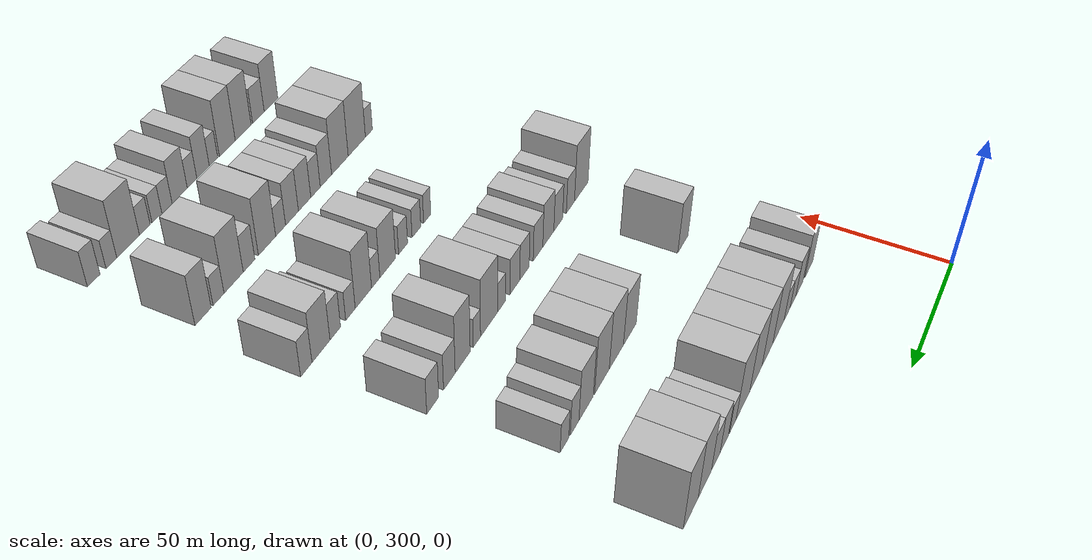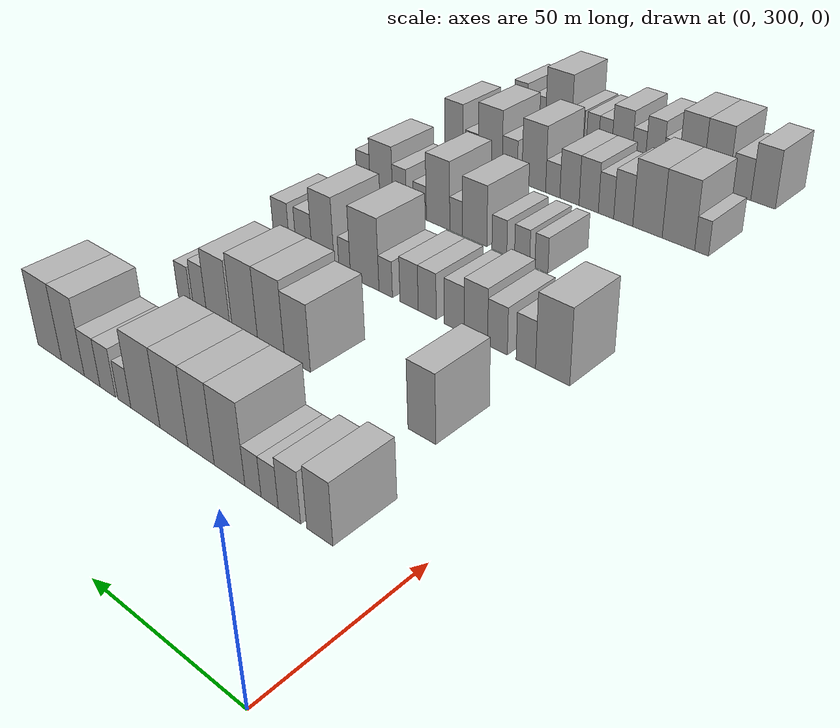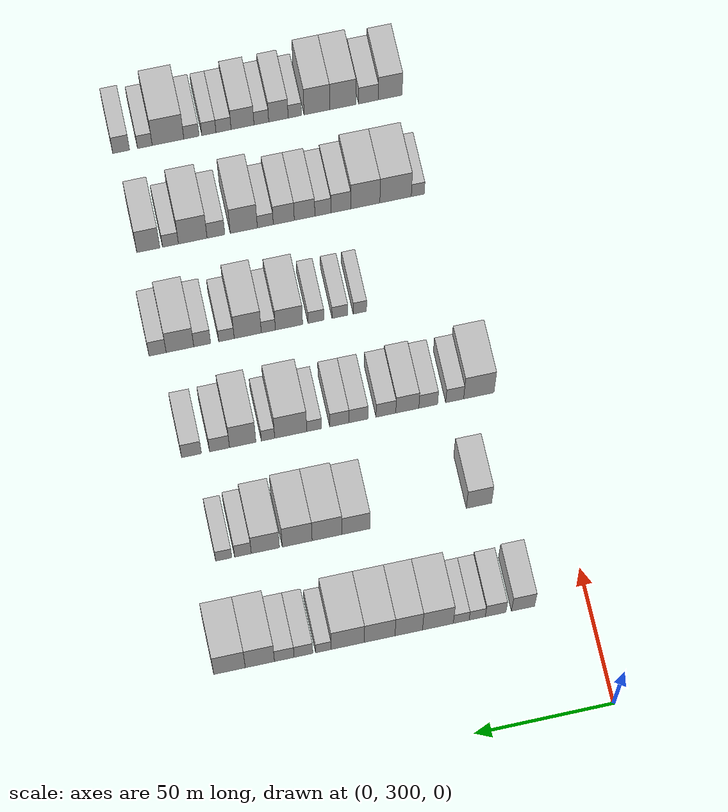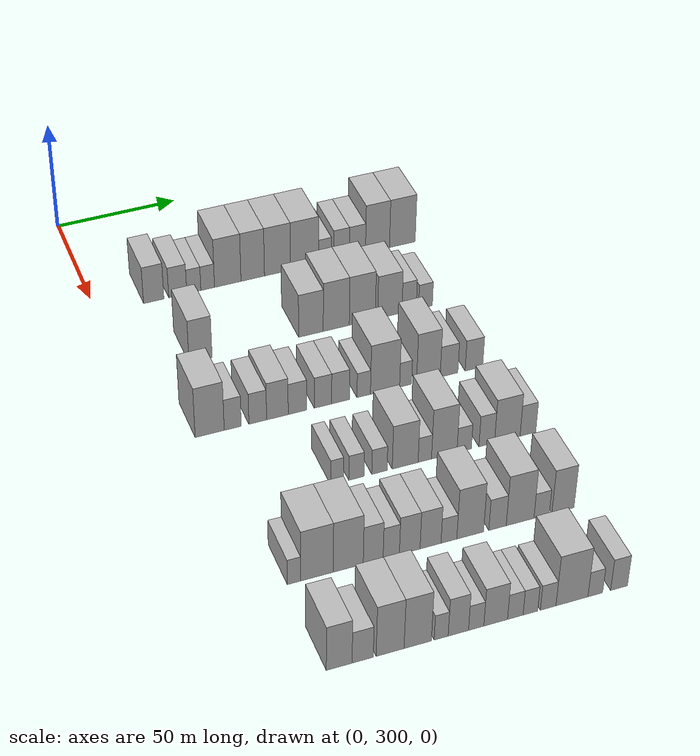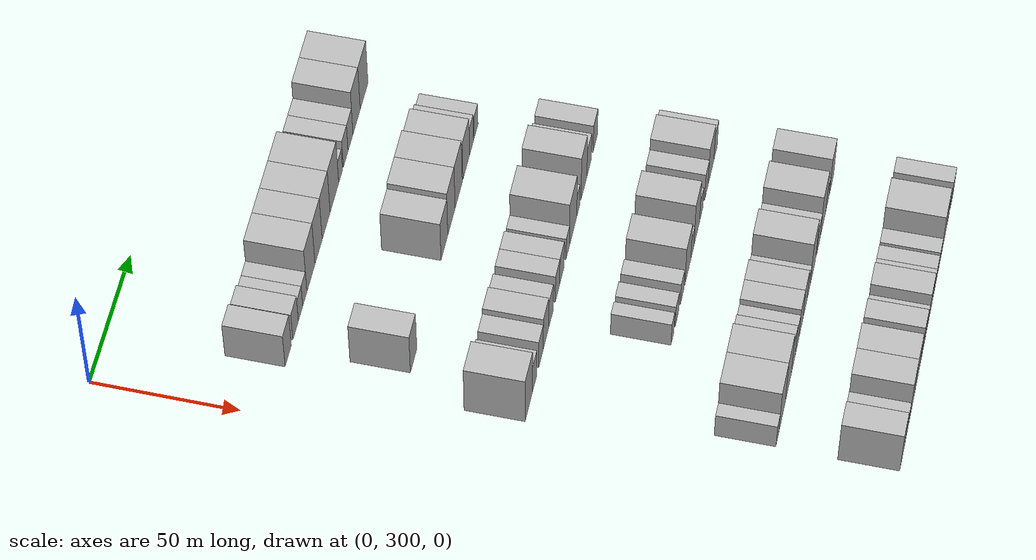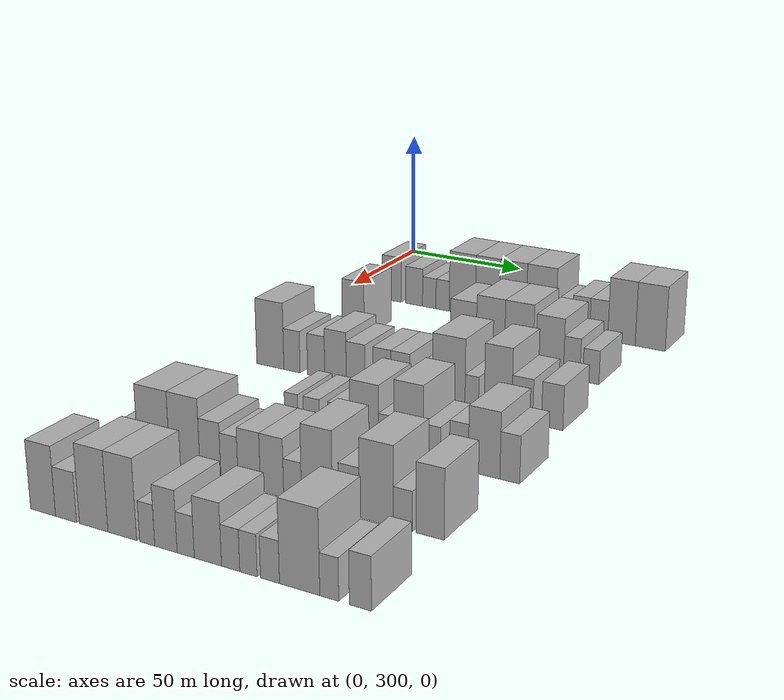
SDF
<sdf version="1.6">
 <world name="default">
  <model name="building_103">
   <static>1</static>
   <pose>50.0000 323.1793 0 0.000000 0.000000 0.000000</pose>
   <link name="link">
    <pose>0 0 9.00 0 0 0</pose>
    <collision name="collision"><geometry><box><size>20.0000 8.3564 18.0000</size></box></geometry></collision>
    <visual name="visual">
     <cast_shadows>0</cast_shadows>
     <geometry><box><size>20.0000 8.3564 18.0000</size></box></geometry>
     <material>
      <script>
       <uri>model://HANNAS_wall/materials/scripts</uri>
       <uri>model://HANNAS_wall/materials/textures</uri>
       <name>vrc/HANNAS_wall</name>
      </script>
     </material>
    </visual>
   </link>
  </model>
  <model name="building_104">
   <static>1</static>
   <pose>50.0000 333.0818 0 0.000000 0.000000 0.000000</pose>
   <link name="link">
    <pose>0 0 7.50 0 0 0</pose>
    <collision name="collision"><geometry><box><size>20.0000 7.4485 15.0000</size></box></geometry></collision>
    <visual name="visual">
     <cast_shadows>0</cast_shadows>
     <geometry><box><size>20.0000 7.4485 15.0000</size></box></geometry>
     <material>
      <script>
       <uri>model://HANNAS_wall/materials/scripts</uri>
       <uri>model://HANNAS_wall/materials/textures</uri>
       <name>vrc/HANNAS_wall</name>
      </script>
     </material>
    </visual>
   </link>
  </model>
  <model name="building_105">
   <static>1</static>
   <pose>50.0000 339.7358 0 0.000000 0.000000 0.000000</pose>
   <link name="link">
    <pose>0 0 6.00 0 0 0</pose>
    <collision name="collision"><geometry><box><size>20.0000 5.8594 12.0000</size></box></geometry></collision>
    <visual name="visual">
     <cast_shadows>0</cast_shadows>
     <geometry><box><size>20.0000 5.8594 12.0000</size></box></geometry>
     <material>
      <script>
       <uri>model://HANNAS_wall/materials/scripts</uri>
       <uri>model://HANNAS_wall/materials/textures</uri>
       <name>vrc/HANNAS_wall</name>
      </script>
     </material>
    </visual>
   </link>
  </model>
  <model name="building_106">
   <static>1</static>
   <pose>50.0000 345.5210 0 0.000000 0.000000 0.000000</pose>
   <link name="link">
    <pose>0 0 6.00 0 0 0</pose>
    <collision name="collision"><geometry><box><size>20.0000 5.7110 12.0000</size></box></geometry></collision>
    <visual name="visual">
     <cast_shadows>0</cast_shadows>
     <geometry><box><size>20.0000 5.7110 12.0000</size></box></geometry>
     <material>
      <script>
       <uri>model://HANNAS_wall/materials/scripts</uri>
       <uri>model://HANNAS_wall/materials/textures</uri>
       <name>vrc/HANNAS_wall</name>
      </script>
     </material>
    </visual>
   </link>
  </model>
  <model name="building_107">
   <static>1</static>
   <pose>50.0000 353.9151 0 0.000000 0.000000 0.000000</pose>
   <link name="link">
    <pose>0 0 12.00 0 0 0</pose>
    <collision name="collision"><geometry><box><size>20.0000 11.0773 24.0000</size></box></geometry></collision>
    <visual name="visual">
     <cast_shadows>0</cast_shadows>
     <geometry><box><size>20.0000 11.0773 24.0000</size></box></geometry>
     <material>
      <script>
       <uri>model://HANNAS_wall/materials/scripts</uri>
       <uri>model://HANNAS_wall/materials/textures</uri>
       <name>vrc/HANNAS_wall</name>
      </script>
     </material>
    </visual>
   </link>
  </model>
  <model name="building_108">
   <static>1</static>
   <pose>50.0000 364.4114 0 0.000000 0.000000 0.000000</pose>
   <link name="link">
    <pose>0 0 12.00 0 0 0</pose>
    <collision name="collision"><geometry><box><size>20.0000 9.9153 24.0000</size></box></geometry></collision>
    <visual name="visual">
     <cast_shadows>0</cast_shadows>
     <geometry><box><size>20.0000 9.9153 24.0000</size></box></geometry>
     <material>
      <script>
       <uri>model://HANNAS_wall/materials/scripts</uri>
       <uri>model://HANNAS_wall/materials/textures</uri>
       <name>vrc/HANNAS_wall</name>
      </script>
     </material>
    </visual>
   </link>
  </model>
  <model name="building_109">
   <static>1</static>
   <pose>50.0000 374.8826 0 0.000000 0.000000 0.000000</pose>
   <link name="link">
    <pose>0 0 12.00 0 0 0</pose>
    <collision name="collision"><geometry><box><size>20.0000 11.0272 24.0000</size></box></geometry></collision>
    <visual name="visual">
     <cast_shadows>0</cast_shadows>
     <geometry><box><size>20.0000 11.0272 24.0000</size></box></geometry>
     <material>
      <script>
       <uri>model://HANNAS_wall/materials/scripts</uri>
       <uri>model://HANNAS_wall/materials/textures</uri>
       <name>vrc/HANNAS_wall</name>
      </script>
     </material>
    </visual>
   </link>
  </model>
  <model name="building_110">
   <static>1</static>
   <pose>50.0000 386.3734 0 0.000000 0.000000 0.000000</pose>
   <link name="link">
    <pose>0 0 12.00 0 0 0</pose>
    <collision name="collision"><geometry><box><size>20.0000 11.9544 24.0000</size></box></geometry></collision>
    <visual name="visual">
     <cast_shadows>0</cast_shadows>
     <geometry><box><size>20.0000 11.9544 24.0000</size></box></geometry>
     <material>
      <script>
       <uri>model://HANNAS_wall/materials/scripts</uri>
       <uri>model://HANNAS_wall/materials/textures</uri>
       <name>vrc/HANNAS_wall</name>
      </script>
     </material>
    </visual>
   </link>
  </model>
  <model name="building_111">
   <static>1</static>
   <pose>50.0000 395.1246 0 0.000000 0.000000 0.000000</pose>
   <link name="link">
    <pose>0 0 6.00 0 0 0</pose>
    <collision name="collision"><geometry><box><size>20.0000 5.5478 12.0000</size></box></geometry></collision>
    <visual name="visual">
     <cast_shadows>0</cast_shadows>
     <geometry><box><size>20.0000 5.5478 12.0000</size></box></geometry>
     <material>
      <script>
       <uri>model://HANNAS_wall/materials/scripts</uri>
       <uri>model://HANNAS_wall/materials/textures</uri>
       <name>vrc/HANNAS_wall</name>
      </script>
     </material>
    </visual>
   </link>
  </model>
  <model name="building_112">
   <static>1</static>
   <pose>50.0000 402.2598 0 0.000000 0.000000 0.000000</pose>
   <link name="link">
    <pose>0 0 7.50 0 0 0</pose>
    <collision name="collision"><geometry><box><size>20.0000 6.7225 15.0000</size></box></geometry></collision>
    <visual name="visual">
     <cast_shadows>0</cast_shadows>
     <geometry><box><size>20.0000 6.7225 15.0000</size></box></geometry>
     <material>
      <script>
       <uri>model://HANNAS_wall/materials/scripts</uri>
       <uri>model://HANNAS_wall/materials/textures</uri>
       <name>vrc/HANNAS_wall</name>
      </script>
     </material>
    </visual>
   </link>
  </model>
  <model name="building_113">
   <static>1</static>
   <pose>50.0000 409.1342 0 0.000000 0.000000 0.000000</pose>
   <link name="link">
    <pose>0 0 7.50 0 0 0</pose>
    <collision name="collision"><geometry><box><size>20.0000 7.0264 15.0000</size></box></geometry></collision>
    <visual name="visual">
     <cast_shadows>0</cast_shadows>
     <geometry><box><size>20.0000 7.0264 15.0000</size></box></geometry>
     <material>
      <script>
       <uri>model://HANNAS_wall/materials/scripts</uri>
       <uri>model://HANNAS_wall/materials/textures</uri>
       <name>vrc/HANNAS_wall</name>
      </script>
     </material>
    </visual>
   </link>
  </model>
  <model name="building_114">
   <static>1</static>
   <pose>50.0000 417.8724 0 0.000000 0.000000 0.000000</pose>
   <link name="link">
    <pose>0 0 12.00 0 0 0</pose>
    <collision name="collision"><geometry><box><size>20.0000 10.4499 24.0000</size></box></geometry></collision>
    <visual name="visual">
     <cast_shadows>0</cast_shadows>
     <geometry><box><size>20.0000 10.4499 24.0000</size></box></geometry>
     <material>
      <script>
       <uri>model://HANNAS_wall/materials/scripts</uri>
       <uri>model://HANNAS_wall/materials/textures</uri>
       <name>vrc/HANNAS_wall</name>
      </script>
     </material>
    </visual>
   </link>
  </model>
  <model name="building_115">
   <static>1</static>
   <pose>50.0000 428.7283 0 0.000000 0.000000 0.000000</pose>
   <link name="link">
    <pose>0 0 12.00 0 0 0</pose>
    <collision name="collision"><geometry><box><size>20.0000 11.2621 24.0000</size></box></geometry></collision>
    <visual name="visual">
     <cast_shadows>0</cast_shadows>
     <geometry><box><size>20.0000 11.2621 24.0000</size></box></geometry>
     <material>
      <script>
       <uri>model://HANNAS_wall/materials/scripts</uri>
       <uri>model://HANNAS_wall/materials/textures</uri>
       <name>vrc/HANNAS_wall</name>
      </script>
     </material>
    </visual>
   </link>
  </model>
  <model name="building_244">
   <static>1</static>
   <pose>90.0000 329.8885 0 0.000000 0.000000 0.000000</pose>
   <link name="link">
    <pose>0 0 10.50 0 0 0</pose>
    <collision name="collision"><geometry><box><size>20.0000 9.2414 21.0000</size></box></geometry></collision>
    <visual name="visual">
     <cast_shadows>0</cast_shadows>
     <geometry><box><size>20.0000 9.2414 21.0000</size></box></geometry>
     <material>
      <script>
       <uri>model://HANNAS_wall/materials/scripts</uri>
       <uri>model://HANNAS_wall/materials/textures</uri>
       <name>vrc/HANNAS_wall</name>
      </script>
     </material>
    </visual>
   </link>
  </model>
  <model name="building_245">
   <static>1</static>
   <pose>90.0000 374.7050 0 0.000000 0.000000 0.000000</pose>
   <link name="link">
    <pose>0 0 10.50 0 0 0</pose>
    <collision name="collision"><geometry><box><size>20.0000 10.1305 21.0000</size></box></geometry></collision>
    <visual name="visual">
     <cast_shadows>0</cast_shadows>
     <geometry><box><size>20.0000 10.1305 21.0000</size></box></geometry>
     <material>
      <script>
       <uri>model://HANNAS_wall/materials/scripts</uri>
       <uri>model://HANNAS_wall/materials/textures</uri>
       <name>vrc/HANNAS_wall</name>
      </script>
     </material>
    </visual>
   </link>
  </model>
  <model name="building_246">
   <static>1</static>
   <pose>90.0000 385.1785 0 0.000000 0.000000 0.000000</pose>
   <link name="link">
    <pose>0 0 12.00 0 0 0</pose>
    <collision name="collision"><geometry><box><size>20.0000 10.8166 24.0000</size></box></geometry></collision>
    <visual name="visual">
     <cast_shadows>0</cast_shadows>
     <geometry><box><size>20.0000 10.8166 24.0000</size></box></geometry>
     <material>
      <script>
       <uri>model://HANNAS_wall/materials/scripts</uri>
       <uri>model://HANNAS_wall/materials/textures</uri>
       <name>vrc/HANNAS_wall</name>
      </script>
     </material>
    </visual>
   </link>
  </model>
  <model name="building_247">
   <static>1</static>
   <pose>90.0000 395.9955 0 0.000000 0.000000 0.000000</pose>
   <link name="link">
    <pose>0 0 12.00 0 0 0</pose>
    <collision name="collision"><geometry><box><size>20.0000 10.8173 24.0000</size></box></geometry></collision>
    <visual name="visual">
     <cast_shadows>0</cast_shadows>
     <geometry><box><size>20.0000 10.8173 24.0000</size></box></geometry>
     <material>
      <script>
       <uri>model://HANNAS_wall/materials/scripts</uri>
       <uri>model://HANNAS_wall/materials/textures</uri>
       <name>vrc/HANNAS_wall</name>
      </script>
     </material>
    </visual>
   </link>
  </model>
  <model name="building_248">
   <static>1</static>
   <pose>90.0000 407.5100 0 0.000000 0.000000 0.000000</pose>
   <link name="link">
    <pose>0 0 10.50 0 0 0</pose>
    <collision name="collision"><geometry><box><size>20.0000 10.2117 21.0000</size></box></geometry></collision>
    <visual name="visual">
     <cast_shadows>0</cast_shadows>
     <geometry><box><size>20.0000 10.2117 21.0000</size></box></geometry>
     <material>
      <script>
       <uri>model://HANNAS_wall/materials/scripts</uri>
       <uri>model://HANNAS_wall/materials/textures</uri>
       <name>vrc/HANNAS_wall</name>
      </script>
     </material>
    </visual>
   </link>
  </model>
  <model name="building_249">
   <static>1</static>
   <pose>90.0000 415.6326 0 0.000000 0.000000 0.000000</pose>
   <link name="link">
    <pose>0 0 7.50 0 0 0</pose>
    <collision name="collision"><geometry><box><size>20.0000 6.0335 15.0000</size></box></geometry></collision>
    <visual name="visual">
     <cast_shadows>0</cast_shadows>
     <geometry><box><size>20.0000 6.0335 15.0000</size></box></geometry>
     <material>
      <script>
       <uri>model://HANNAS_wall/materials/scripts</uri>
       <uri>model://HANNAS_wall/materials/textures</uri>
       <name>vrc/HANNAS_wall</name>
      </script>
     </material>
    </visual>
   </link>
  </model>
  <model name="building_250">
   <static>1</static>
   <pose>90.0000 422.5718 0 0.000000 0.000000 0.000000</pose>
   <link name="link">
    <pose>0 0 6.00 0 0 0</pose>
    <collision name="collision"><geometry><box><size>20.0000 5.8448 12.0000</size></box></geometry></collision>
    <visual name="visual">
     <cast_shadows>0</cast_shadows>
     <geometry><box><size>20.0000 5.8448 12.0000</size></box></geometry>
     <material>
      <script>
       <uri>model://HANNAS_wall/materials/scripts</uri>
       <uri>model://HANNAS_wall/materials/textures</uri>
       <name>vrc/HANNAS_wall</name>
      </script>
     </material>
    </visual>
   </link>
  </model>
  <model name="building_377">
   <static>1</static>
   <pose>130.0000 320.7247 0 0.000000 0.000000 0.000000</pose>
   <link name="link">
    <pose>0 0 12.00 0 0 0</pose>
    <collision name="collision"><geometry><box><size>20.0000 11.2108 24.0000</size></box></geometry></collision>
    <visual name="visual">
     <cast_shadows>0</cast_shadows>
     <geometry><box><size>20.0000 11.2108 24.0000</size></box></geometry>
     <material>
      <script>
       <uri>model://HANNAS_wall/materials/scripts</uri>
       <uri>model://HANNAS_wall/materials/textures</uri>
       <name>vrc/HANNAS_wall</name>
      </script>
     </material>
    </visual>
   </link>
  </model>
  <model name="building_378">
   <static>1</static>
   <pose>130.0000 329.6202 0 0.000000 0.000000 0.000000</pose>
   <link name="link">
    <pose>0 0 7.50 0 0 0</pose>
    <collision name="collision"><geometry><box><size>20.0000 6.5800 15.0000</size></box></geometry></collision>
    <visual name="visual">
     <cast_shadows>0</cast_shadows>
     <geometry><box><size>20.0000 6.5800 15.0000</size></box></geometry>
     <material>
      <script>
       <uri>model://HANNAS_wall/materials/scripts</uri>
       <uri>model://HANNAS_wall/materials/textures</uri>
       <name>vrc/HANNAS_wall</name>
      </script>
     </material>
    </visual>
   </link>
  </model>
  <model name="building_379">
   <static>1</static>
   <pose>130.0000 339.3630 0 0.000000 0.000000 0.000000</pose>
   <link name="link">
    <pose>0 0 7.50 0 0 0</pose>
    <collision name="collision"><geometry><box><size>20.0000 6.9056 15.0000</size></box></geometry></collision>
    <visual name="visual">
     <cast_shadows>0</cast_shadows>
     <geometry><box><size>20.0000 6.9056 15.0000</size></box></geometry>
     <material>
      <script>
       <uri>model://HANNAS_wall/materials/scripts</uri>
       <uri>model://HANNAS_wall/materials/textures</uri>
       <name>vrc/HANNAS_wall</name>
      </script>
     </material>
    </visual>
   </link>
  </model>
  <model name="building_380">
   <static>1</static>
   <pose>130.0000 347.0591 0 0.000000 0.000000 0.000000</pose>
   <link name="link">
    <pose>0 0 9.00 0 0 0</pose>
    <collision name="collision"><geometry><box><size>20.0000 8.4866 18.0000</size></box></geometry></collision>
    <visual name="visual">
     <cast_shadows>0</cast_shadows>
     <geometry><box><size>20.0000 8.4866 18.0000</size></box></geometry>
     <material>
      <script>
       <uri>model://HANNAS_wall/materials/scripts</uri>
       <uri>model://HANNAS_wall/materials/textures</uri>
       <name>vrc/HANNAS_wall</name>
      </script>
     </material>
    </visual>
   </link>
  </model>
  <model name="building_381">
   <static>1</static>
   <pose>130.0000 354.9352 0 0.000000 0.000000 0.000000</pose>
   <link name="link">
    <pose>0 0 7.50 0 0 0</pose>
    <collision name="collision"><geometry><box><size>20.0000 7.2655 15.0000</size></box></geometry></collision>
    <visual name="visual">
     <cast_shadows>0</cast_shadows>
     <geometry><box><size>20.0000 7.2655 15.0000</size></box></geometry>
     <material>
      <script>
       <uri>model://HANNAS_wall/materials/scripts</uri>
       <uri>model://HANNAS_wall/materials/textures</uri>
       <name>vrc/HANNAS_wall</name>
      </script>
     </material>
    </visual>
   </link>
  </model>
  <model name="building_382">
   <static>1</static>
   <pose>130.0000 365.0152 0 0.000000 0.000000 0.000000</pose>
   <link name="link">
    <pose>0 0 7.50 0 0 0</pose>
    <collision name="collision"><geometry><box><size>20.0000 6.8946 15.0000</size></box></geometry></collision>
    <visual name="visual">
     <cast_shadows>0</cast_shadows>
     <geometry><box><size>20.0000 6.8946 15.0000</size></box></geometry>
     <material>
      <script>
       <uri>model://HANNAS_wall/materials/scripts</uri>
       <uri>model://HANNAS_wall/materials/textures</uri>
       <name>vrc/HANNAS_wall</name>
      </script>
     </material>
    </visual>
   </link>
  </model>
  <model name="building_383">
   <static>1</static>
   <pose>130.0000 372.0171 0 0.000000 0.000000 0.000000</pose>
   <link name="link">
    <pose>0 0 7.50 0 0 0</pose>
    <collision name="collision"><geometry><box><size>20.0000 7.1091 15.0000</size></box></geometry></collision>
    <visual name="visual">
     <cast_shadows>0</cast_shadows>
     <geometry><box><size>20.0000 7.1091 15.0000</size></box></geometry>
     <material>
      <script>
       <uri>model://HANNAS_wall/materials/scripts</uri>
       <uri>model://HANNAS_wall/materials/textures</uri>
       <name>vrc/HANNAS_wall</name>
      </script>
     </material>
    </visual>
   </link>
  </model>
  <model name="building_384">
   <static>1</static>
   <pose>130.0000 381.2772 0 0.000000 0.000000 0.000000</pose>
   <link name="link">
    <pose>0 0 6.00 0 0 0</pose>
    <collision name="collision"><geometry><box><size>20.0000 5.4111 12.0000</size></box></geometry></collision>
    <visual name="visual">
     <cast_shadows>0</cast_shadows>
     <geometry><box><size>20.0000 5.4111 12.0000</size></box></geometry>
     <material>
      <script>
       <uri>model://HANNAS_wall/materials/scripts</uri>
       <uri>model://HANNAS_wall/materials/textures</uri>
       <name>vrc/HANNAS_wall</name>
      </script>
     </material>
    </visual>
   </link>
  </model>
  <model name="building_385">
   <static>1</static>
   <pose>130.0000 389.8644 0 0.000000 0.000000 0.000000</pose>
   <link name="link">
    <pose>0 0 12.00 0 0 0</pose>
    <collision name="collision"><geometry><box><size>20.0000 11.7632 24.0000</size></box></geometry></collision>
    <visual name="visual">
     <cast_shadows>0</cast_shadows>
     <geometry><box><size>20.0000 11.7632 24.0000</size></box></geometry>
     <material>
      <script>
       <uri>model://HANNAS_wall/materials/scripts</uri>
       <uri>model://HANNAS_wall/materials/textures</uri>
       <name>vrc/HANNAS_wall</name>
      </script>
     </material>
    </visual>
   </link>
  </model>
  <model name="building_386">
   <static>1</static>
   <pose>130.0000 398.1774 0 0.000000 0.000000 0.000000</pose>
   <link name="link">
    <pose>0 0 6.00 0 0 0</pose>
    <collision name="collision"><geometry><box><size>20.0000 4.8628 12.0000</size></box></geometry></collision>
    <visual name="visual">
     <cast_shadows>0</cast_shadows>
     <geometry><box><size>20.0000 4.8628 12.0000</size></box></geometry>
     <material>
      <script>
       <uri>model://HANNAS_wall/materials/scripts</uri>
       <uri>model://HANNAS_wall/materials/textures</uri>
       <name>vrc/HANNAS_wall</name>
      </script>
     </material>
    </visual>
   </link>
  </model>
  <model name="building_387">
   <static>1</static>
   <pose>130.0000 407.4339 0 0.000000 0.000000 0.000000</pose>
   <link name="link">
    <pose>0 0 12.00 0 0 0</pose>
    <collision name="collision"><geometry><box><size>20.0000 9.6502 24.0000</size></box></geometry></collision>
    <visual name="visual">
     <cast_shadows>0</cast_shadows>
     <geometry><box><size>20.0000 9.6502 24.0000</size></box></geometry>
     <material>
      <script>
       <uri>model://HANNAS_wall/materials/scripts</uri>
       <uri>model://HANNAS_wall/materials/textures</uri>
       <name>vrc/HANNAS_wall</name>
      </script>
     </material>
    </visual>
   </link>
  </model>
  <model name="building_388">
   <static>1</static>
   <pose>130.0000 415.8881 0 0.000000 0.000000 0.000000</pose>
   <link name="link">
    <pose>0 0 7.50 0 0 0</pose>
    <collision name="collision"><geometry><box><size>20.0000 7.2582 15.0000</size></box></geometry></collision>
    <visual name="visual">
     <cast_shadows>0</cast_shadows>
     <geometry><box><size>20.0000 7.2582 15.0000</size></box></geometry>
     <material>
      <script>
       <uri>model://HANNAS_wall/materials/scripts</uri>
       <uri>model://HANNAS_wall/materials/textures</uri>
       <name>vrc/HANNAS_wall</name>
      </script>
     </material>
    </visual>
   </link>
  </model>
  <model name="building_389">
   <static>1</static>
   <pose>130.0000 426.1358 0 0.000000 0.000000 0.000000</pose>
   <link name="link">
    <pose>0 0 7.50 0 0 0</pose>
    <collision name="collision"><geometry><box><size>20.0000 7.2373 15.0000</size></box></geometry></collision>
    <visual name="visual">
     <cast_shadows>0</cast_shadows>
     <geometry><box><size>20.0000 7.2373 15.0000</size></box></geometry>
     <material>
      <script>
       <uri>model://HANNAS_wall/materials/scripts</uri>
       <uri>model://HANNAS_wall/materials/textures</uri>
       <name>vrc/HANNAS_wall</name>
      </script>
     </material>
    </visual>
   </link>
  </model>
  <model name="building_517">
   <static>1</static>
   <pose>170.0000 355.7711 0 0.000000 0.000000 0.000000</pose>
   <link name="link">
    <pose>0 0 6.00 0 0 0</pose>
    <collision name="collision"><geometry><box><size>20.0000 4.9340 12.0000</size></box></geometry></collision>
    <visual name="visual">
     <cast_shadows>0</cast_shadows>
     <geometry><box><size>20.0000 4.9340 12.0000</size></box></geometry>
     <material>
      <script>
       <uri>model://HANNAS_wall/materials/scripts</uri>
       <uri>model://HANNAS_wall/materials/textures</uri>
       <name>vrc/HANNAS_wall</name>
      </script>
     </material>
    </visual>
   </link>
  </model>
  <model name="building_518">
   <static>1</static>
   <pose>170.0000 363.1621 0 0.000000 0.000000 0.000000</pose>
   <link name="link">
    <pose>0 0 6.00 0 0 0</pose>
    <collision name="collision"><geometry><box><size>20.0000 5.8480 12.0000</size></box></geometry></collision>
    <visual name="visual">
     <cast_shadows>0</cast_shadows>
     <geometry><box><size>20.0000 5.8480 12.0000</size></box></geometry>
     <material>
      <script>
       <uri>model://HANNAS_wall/materials/scripts</uri>
       <uri>model://HANNAS_wall/materials/textures</uri>
       <name>vrc/HANNAS_wall</name>
      </script>
     </material>
    </visual>
   </link>
  </model>
  <model name="building_519">
   <static>1</static>
   <pose>170.0000 372.0342 0 0.000000 0.000000 0.000000</pose>
   <link name="link">
    <pose>0 0 6.00 0 0 0</pose>
    <collision name="collision"><geometry><box><size>20.0000 5.8962 12.0000</size></box></geometry></collision>
    <visual name="visual">
     <cast_shadows>0</cast_shadows>
     <geometry><box><size>20.0000 5.8962 12.0000</size></box></geometry>
     <material>
      <script>
       <uri>model://HANNAS_wall/materials/scripts</uri>
       <uri>model://HANNAS_wall/materials/textures</uri>
       <name>vrc/HANNAS_wall</name>
      </script>
     </material>
    </visual>
   </link>
  </model>
  <model name="building_520">
   <static>1</static>
   <pose>170.0000 382.0188 0 0.000000 0.000000 0.000000</pose>
   <link name="link">
    <pose>0 0 10.50 0 0 0</pose>
    <collision name="collision"><geometry><box><size>20.0000 10.0729 21.0000</size></box></geometry></collision>
    <visual name="visual">
     <cast_shadows>0</cast_shadows>
     <geometry><box><size>20.0000 10.0729 21.0000</size></box></geometry>
     <material>
      <script>
       <uri>model://HANNAS_wall/materials/scripts</uri>
       <uri>model://HANNAS_wall/materials/textures</uri>
       <name>vrc/HANNAS_wall</name>
      </script>
     </material>
    </visual>
   </link>
  </model>
  <model name="building_521">
   <static>1</static>
   <pose>170.0000 389.6705 0 0.000000 0.000000 0.000000</pose>
   <link name="link">
    <pose>0 0 6.00 0 0 0</pose>
    <collision name="collision"><geometry><box><size>20.0000 5.2306 12.0000</size></box></geometry></collision>
    <visual name="visual">
     <cast_shadows>0</cast_shadows>
     <geometry><box><size>20.0000 5.2306 12.0000</size></box></geometry>
     <material>
      <script>
       <uri>model://HANNAS_wall/materials/scripts</uri>
       <uri>model://HANNAS_wall/materials/textures</uri>
       <name>vrc/HANNAS_wall</name>
      </script>
     </material>
    </visual>
   </link>
  </model>
  <model name="building_522">
   <static>1</static>
   <pose>170.0000 397.2876 0 0.000000 0.000000 0.000000</pose>
   <link name="link">
    <pose>0 0 12.00 0 0 0</pose>
    <collision name="collision"><geometry><box><size>20.0000 10.0034 24.0000</size></box></geometry></collision>
    <visual name="visual">
     <cast_shadows>0</cast_shadows>
     <geometry><box><size>20.0000 10.0034 24.0000</size></box></geometry>
     <material>
      <script>
       <uri>model://HANNAS_wall/materials/scripts</uri>
       <uri>model://HANNAS_wall/materials/textures</uri>
       <name>vrc/HANNAS_wall</name>
      </script>
     </material>
    </visual>
   </link>
  </model>
  <model name="building_523">
   <static>1</static>
   <pose>170.0000 405.1422 0 0.000000 0.000000 0.000000</pose>
   <link name="link">
    <pose>0 0 6.00 0 0 0</pose>
    <collision name="collision"><geometry><box><size>20.0000 5.7060 12.0000</size></box></geometry></collision>
    <visual name="visual">
     <cast_shadows>0</cast_shadows>
     <geometry><box><size>20.0000 5.7060 12.0000</size></box></geometry>
     <material>
      <script>
       <uri>model://HANNAS_wall/materials/scripts</uri>
       <uri>model://HANNAS_wall/materials/textures</uri>
       <name>vrc/HANNAS_wall</name>
      </script>
     </material>
    </visual>
   </link>
  </model>
  <model name="building_524">
   <static>1</static>
   <pose>170.0000 414.0888 0 0.000000 0.000000 0.000000</pose>
   <link name="link">
    <pose>0 0 7.50 0 0 0</pose>
    <collision name="collision"><geometry><box><size>20.0000 6.1872 15.0000</size></box></geometry></collision>
    <visual name="visual">
     <cast_shadows>0</cast_shadows>
     <geometry><box><size>20.0000 6.1872 15.0000</size></box></geometry>
     <material>
      <script>
       <uri>model://HANNAS_wall/materials/scripts</uri>
       <uri>model://HANNAS_wall/materials/textures</uri>
       <name>vrc/HANNAS_wall</name>
      </script>
     </material>
    </visual>
   </link>
  </model>
  <model name="building_525">
   <static>1</static>
   <pose>170.0000 422.2865 0 0.000000 0.000000 0.000000</pose>
   <link name="link">
    <pose>0 0 10.50 0 0 0</pose>
    <collision name="collision"><geometry><box><size>20.0000 10.2081 21.0000</size></box></geometry></collision>
    <visual name="visual">
     <cast_shadows>0</cast_shadows>
     <geometry><box><size>20.0000 10.2081 21.0000</size></box></geometry>
     <material>
      <script>
       <uri>model://HANNAS_wall/materials/scripts</uri>
       <uri>model://HANNAS_wall/materials/textures</uri>
       <name>vrc/HANNAS_wall</name>
      </script>
     </material>
    </visual>
   </link>
  </model>
  <model name="building_526">
   <static>1</static>
   <pose>170.0000 430.5442 0 0.000000 0.000000 0.000000</pose>
   <link name="link">
    <pose>0 0 7.50 0 0 0</pose>
    <collision name="collision"><geometry><box><size>20.0000 6.3075 15.0000</size></box></geometry></collision>
    <visual name="visual">
     <cast_shadows>0</cast_shadows>
     <geometry><box><size>20.0000 6.3075 15.0000</size></box></geometry>
     <material>
      <script>
       <uri>model://HANNAS_wall/materials/scripts</uri>
       <uri>model://HANNAS_wall/materials/textures</uri>
       <name>vrc/HANNAS_wall</name>
      </script>
     </material>
    </visual>
   </link>
  </model>
  <model name="building_652">
   <static>1</static>
   <pose>210.0000 325.2540 0 0.000000 0.000000 0.000000</pose>
   <link name="link">
    <pose>0 0 6.00 0 0 0</pose>
    <collision name="collision"><geometry><box><size>20.0000 4.8889 12.0000</size></box></geometry></collision>
    <visual name="visual">
     <cast_shadows>0</cast_shadows>
     <geometry><box><size>20.0000 4.8889 12.0000</size></box></geometry>
     <material>
      <script>
       <uri>model://HANNAS_wall/materials/scripts</uri>
       <uri>model://HANNAS_wall/materials/textures</uri>
       <name>vrc/HANNAS_wall</name>
      </script>
     </material>
    </visual>
   </link>
  </model>
  <model name="building_653">
   <static>1</static>
   <pose>210.0000 333.5991 0 0.000000 0.000000 0.000000</pose>
   <link name="link">
    <pose>0 0 12.00 0 0 0</pose>
    <collision name="collision"><geometry><box><size>20.0000 11.8014 24.0000</size></box></geometry></collision>
    <visual name="visual">
     <cast_shadows>0</cast_shadows>
     <geometry><box><size>20.0000 11.8014 24.0000</size></box></geometry>
     <material>
      <script>
       <uri>model://HANNAS_wall/materials/scripts</uri>
       <uri>model://HANNAS_wall/materials/textures</uri>
       <name>vrc/HANNAS_wall</name>
      </script>
     </material>
    </visual>
   </link>
  </model>
  <model name="building_654">
   <static>1</static>
   <pose>210.0000 344.9964 0 0.000000 0.000000 0.000000</pose>
   <link name="link">
    <pose>0 0 12.00 0 0 0</pose>
    <collision name="collision"><geometry><box><size>20.0000 10.9932 24.0000</size></box></geometry></collision>
    <visual name="visual">
     <cast_shadows>0</cast_shadows>
     <geometry><box><size>20.0000 10.9932 24.0000</size></box></geometry>
     <material>
      <script>
       <uri>model://HANNAS_wall/materials/scripts</uri>
       <uri>model://HANNAS_wall/materials/textures</uri>
       <name>vrc/HANNAS_wall</name>
      </script>
     </material>
    </visual>
   </link>
  </model>
  <model name="building_655">
   <static>1</static>
   <pose>210.0000 354.1668 0 0.000000 0.000000 0.000000</pose>
   <link name="link">
    <pose>0 0 9.00 0 0 0</pose>
    <collision name="collision"><geometry><box><size>20.0000 7.3475 18.0000</size></box></geometry></collision>
    <visual name="visual">
     <cast_shadows>0</cast_shadows>
     <geometry><box><size>20.0000 7.3475 18.0000</size></box></geometry>
     <material>
      <script>
       <uri>model://HANNAS_wall/materials/scripts</uri>
       <uri>model://HANNAS_wall/materials/textures</uri>
       <name>vrc/HANNAS_wall</name>
      </script>
     </material>
    </visual>
   </link>
  </model>
  <model name="building_656">
   <static>1</static>
   <pose>210.0000 360.8563 0 0.000000 0.000000 0.000000</pose>
   <link name="link">
    <pose>0 0 7.50 0 0 0</pose>
    <collision name="collision"><geometry><box><size>20.0000 6.0315 15.0000</size></box></geometry></collision>
    <visual name="visual">
     <cast_shadows>0</cast_shadows>
     <geometry><box><size>20.0000 6.0315 15.0000</size></box></geometry>
     <material>
      <script>
       <uri>model://HANNAS_wall/materials/scripts</uri>
       <uri>model://HANNAS_wall/materials/textures</uri>
       <name>vrc/HANNAS_wall</name>
      </script>
     </material>
    </visual>
   </link>
  </model>
  <model name="building_657">
   <static>1</static>
   <pose>210.0000 367.7252 0 0.000000 0.000000 0.000000</pose>
   <link name="link">
    <pose>0 0 9.00 0 0 0</pose>
    <collision name="collision"><geometry><box><size>20.0000 7.7062 18.0000</size></box></geometry></collision>
    <visual name="visual">
     <cast_shadows>0</cast_shadows>
     <geometry><box><size>20.0000 7.7062 18.0000</size></box></geometry>
     <material>
      <script>
       <uri>model://HANNAS_wall/materials/scripts</uri>
       <uri>model://HANNAS_wall/materials/textures</uri>
       <name>vrc/HANNAS_wall</name>
      </script>
     </material>
    </visual>
   </link>
  </model>
  <model name="building_658">
   <static>1</static>
   <pose>210.0000 375.5061 0 0.000000 0.000000 0.000000</pose>
   <link name="link">
    <pose>0 0 9.00 0 0 0</pose>
    <collision name="collision"><geometry><box><size>20.0000 7.8557 18.0000</size></box></geometry></collision>
    <visual name="visual">
     <cast_shadows>0</cast_shadows>
     <geometry><box><size>20.0000 7.8557 18.0000</size></box></geometry>
     <material>
      <script>
       <uri>model://HANNAS_wall/materials/scripts</uri>
       <uri>model://HANNAS_wall/materials/textures</uri>
       <name>vrc/HANNAS_wall</name>
      </script>
     </material>
    </visual>
   </link>
  </model>
  <model name="building_659">
   <static>1</static>
   <pose>210.0000 382.4104 0 0.000000 0.000000 0.000000</pose>
   <link name="link">
    <pose>0 0 6.00 0 0 0</pose>
    <collision name="collision"><geometry><box><size>20.0000 5.9529 12.0000</size></box></geometry></collision>
    <visual name="visual">
     <cast_shadows>0</cast_shadows>
     <geometry><box><size>20.0000 5.9529 12.0000</size></box></geometry>
     <material>
      <script>
       <uri>model://HANNAS_wall/materials/scripts</uri>
       <uri>model://HANNAS_wall/materials/textures</uri>
       <name>vrc/HANNAS_wall</name>
      </script>
     </material>
    </visual>
   </link>
  </model>
  <model name="building_660">
   <static>1</static>
   <pose>210.0000 390.4539 0 0.000000 0.000000 0.000000</pose>
   <link name="link">
    <pose>0 0 12.00 0 0 0</pose>
    <collision name="collision"><geometry><box><size>20.0000 10.1340 24.0000</size></box></geometry></collision>
    <visual name="visual">
     <cast_shadows>0</cast_shadows>
     <geometry><box><size>20.0000 10.1340 24.0000</size></box></geometry>
     <material>
      <script>
       <uri>model://HANNAS_wall/materials/scripts</uri>
       <uri>model://HANNAS_wall/materials/textures</uri>
       <name>vrc/HANNAS_wall</name>
      </script>
     </material>
    </visual>
   </link>
  </model>
  <model name="building_661">
   <static>1</static>
   <pose>210.0000 400.8377 0 0.000000 0.000000 0.000000</pose>
   <link name="link">
    <pose>0 0 7.50 0 0 0</pose>
    <collision name="collision"><geometry><box><size>20.0000 6.6337 15.0000</size></box></geometry></collision>
    <visual name="visual">
     <cast_shadows>0</cast_shadows>
     <geometry><box><size>20.0000 6.6337 15.0000</size></box></geometry>
     <material>
      <script>
       <uri>model://HANNAS_wall/materials/scripts</uri>
       <uri>model://HANNAS_wall/materials/textures</uri>
       <name>vrc/HANNAS_wall</name>
      </script>
     </material>
    </visual>
   </link>
  </model>
  <model name="building_662">
   <static>1</static>
   <pose>210.0000 409.4812 0 0.000000 0.000000 0.000000</pose>
   <link name="link">
    <pose>0 0 12.00 0 0 0</pose>
    <collision name="collision"><geometry><box><size>20.0000 10.6532 24.0000</size></box></geometry></collision>
    <visual name="visual">
     <cast_shadows>0</cast_shadows>
     <geometry><box><size>20.0000 10.6532 24.0000</size></box></geometry>
     <material>
      <script>
       <uri>model://HANNAS_wall/materials/scripts</uri>
       <uri>model://HANNAS_wall/materials/textures</uri>
       <name>vrc/HANNAS_wall</name>
      </script>
     </material>
    </visual>
   </link>
  </model>
  <model name="building_663">
   <static>1</static>
   <pose>210.0000 417.7731 0 0.000000 0.000000 0.000000</pose>
   <link name="link">
    <pose>0 0 6.00 0 0 0</pose>
    <collision name="collision"><geometry><box><size>20.0000 5.9305 12.0000</size></box></geometry></collision>
    <visual name="visual">
     <cast_shadows>0</cast_shadows>
     <geometry><box><size>20.0000 5.9305 12.0000</size></box></geometry>
     <material>
      <script>
       <uri>model://HANNAS_wall/materials/scripts</uri>
       <uri>model://HANNAS_wall/materials/textures</uri>
       <name>vrc/HANNAS_wall</name>
      </script>
     </material>
    </visual>
   </link>
  </model>
  <model name="building_664">
   <static>1</static>
   <pose>210.0000 426.0253 0 0.000000 0.000000 0.000000</pose>
   <link name="link">
    <pose>0 0 10.50 0 0 0</pose>
    <collision name="collision"><geometry><box><size>20.0000 8.5741 21.0000</size></box></geometry></collision>
    <visual name="visual">
     <cast_shadows>0</cast_shadows>
     <geometry><box><size>20.0000 8.5741 21.0000</size></box></geometry>
     <material>
      <script>
       <uri>model://HANNAS_wall/materials/scripts</uri>
       <uri>model://HANNAS_wall/materials/textures</uri>
       <name>vrc/HANNAS_wall</name>
      </script>
     </material>
    </visual>
   </link>
  </model>
  <model name="building_799">
   <static>1</static>
   <pose>250.0000 326.7766 0 0.000000 0.000000 0.000000</pose>
   <link name="link">
    <pose>0 0 10.50 0 0 0</pose>
    <collision name="collision"><geometry><box><size>20.0000 9.0097 21.0000</size></box></geometry></collision>
    <visual name="visual">
     <cast_shadows>0</cast_shadows>
     <geometry><box><size>20.0000 9.0097 21.0000</size></box></geometry>
     <material>
      <script>
       <uri>model://HANNAS_wall/materials/scripts</uri>
       <uri>model://HANNAS_wall/materials/textures</uri>
       <name>vrc/HANNAS_wall</name>
      </script>
     </material>
    </visual>
   </link>
  </model>
  <model name="building_800">
   <static>1</static>
   <pose>250.0000 335.0151 0 0.000000 0.000000 0.000000</pose>
   <link name="link">
    <pose>0 0 7.50 0 0 0</pose>
    <collision name="collision"><geometry><box><size>20.0000 7.4674 15.0000</size></box></geometry></collision>
    <visual name="visual">
     <cast_shadows>0</cast_shadows>
     <geometry><box><size>20.0000 7.4674 15.0000</size></box></geometry>
     <material>
      <script>
       <uri>model://HANNAS_wall/materials/scripts</uri>
       <uri>model://HANNAS_wall/materials/textures</uri>
       <name>vrc/HANNAS_wall</name>
      </script>
     </material>
    </visual>
   </link>
  </model>
  <model name="building_801">
   <static>1</static>
   <pose>250.0000 344.6997 0 0.000000 0.000000 0.000000</pose>
   <link name="link">
    <pose>0 0 12.00 0 0 0</pose>
    <collision name="collision"><geometry><box><size>20.0000 9.9018 24.0000</size></box></geometry></collision>
    <visual name="visual">
     <cast_shadows>0</cast_shadows>
     <geometry><box><size>20.0000 9.9018 24.0000</size></box></geometry>
     <material>
      <script>
       <uri>model://HANNAS_wall/materials/scripts</uri>
       <uri>model://HANNAS_wall/materials/textures</uri>
       <name>vrc/HANNAS_wall</name>
      </script>
     </material>
    </visual>
   </link>
  </model>
  <model name="building_802">
   <static>1</static>
   <pose>250.0000 354.5200 0 0.000000 0.000000 0.000000</pose>
   <link name="link">
    <pose>0 0 12.00 0 0 0</pose>
    <collision name="collision"><geometry><box><size>20.0000 9.7388 24.0000</size></box></geometry></collision>
    <visual name="visual">
     <cast_shadows>0</cast_shadows>
     <geometry><box><size>20.0000 9.7388 24.0000</size></box></geometry>
     <material>
      <script>
       <uri>model://HANNAS_wall/materials/scripts</uri>
       <uri>model://HANNAS_wall/materials/textures</uri>
       <name>vrc/HANNAS_wall</name>
      </script>
     </material>
    </visual>
   </link>
  </model>
  <model name="building_803">
   <static>1</static>
   <pose>250.0000 362.9042 0 0.000000 0.000000 0.000000</pose>
   <link name="link">
    <pose>0 0 6.00 0 0 0</pose>
    <collision name="collision"><geometry><box><size>20.0000 5.0297 12.0000</size></box></geometry></collision>
    <visual name="visual">
     <cast_shadows>0</cast_shadows>
     <geometry><box><size>20.0000 5.0297 12.0000</size></box></geometry>
     <material>
      <script>
       <uri>model://HANNAS_wall/materials/scripts</uri>
       <uri>model://HANNAS_wall/materials/textures</uri>
       <name>vrc/HANNAS_wall</name>
      </script>
     </material>
    </visual>
   </link>
  </model>
  <model name="building_804">
   <static>1</static>
   <pose>250.0000 369.0878 0 0.000000 0.000000 0.000000</pose>
   <link name="link">
    <pose>0 0 9.00 0 0 0</pose>
    <collision name="collision"><geometry><box><size>20.0000 7.3375 18.0000</size></box></geometry></collision>
    <visual name="visual">
     <cast_shadows>0</cast_shadows>
     <geometry><box><size>20.0000 7.3375 18.0000</size></box></geometry>
     <material>
      <script>
       <uri>model://HANNAS_wall/materials/scripts</uri>
       <uri>model://HANNAS_wall/materials/textures</uri>
       <name>vrc/HANNAS_wall</name>
      </script>
     </material>
    </visual>
   </link>
  </model>
  <model name="building_805">
   <static>1</static>
   <pose>250.0000 375.5287 0 0.000000 0.000000 0.000000</pose>
   <link name="link">
    <pose>0 0 6.00 0 0 0</pose>
    <collision name="collision"><geometry><box><size>20.0000 5.5442 12.0000</size></box></geometry></collision>
    <visual name="visual">
     <cast_shadows>0</cast_shadows>
     <geometry><box><size>20.0000 5.5442 12.0000</size></box></geometry>
     <material>
      <script>
       <uri>model://HANNAS_wall/materials/scripts</uri>
       <uri>model://HANNAS_wall/materials/textures</uri>
       <name>vrc/HANNAS_wall</name>
      </script>
     </material>
    </visual>
   </link>
  </model>
  <model name="building_806">
   <static>1</static>
   <pose>250.0000 382.6221 0 0.000000 0.000000 0.000000</pose>
   <link name="link">
    <pose>0 0 9.00 0 0 0</pose>
    <collision name="collision"><geometry><box><size>20.0000 8.6425 18.0000</size></box></geometry></collision>
    <visual name="visual">
     <cast_shadows>0</cast_shadows>
     <geometry><box><size>20.0000 8.6425 18.0000</size></box></geometry>
     <material>
      <script>
       <uri>model://HANNAS_wall/materials/scripts</uri>
       <uri>model://HANNAS_wall/materials/textures</uri>
       <name>vrc/HANNAS_wall</name>
      </script>
     </material>
    </visual>
   </link>
  </model>
  <model name="building_807">
   <static>1</static>
   <pose>250.0000 389.7875 0 0.000000 0.000000 0.000000</pose>
   <link name="link">
    <pose>0 0 6.00 0 0 0</pose>
    <collision name="collision"><geometry><box><size>20.0000 5.6883 12.0000</size></box></geometry></collision>
    <visual name="visual">
     <cast_shadows>0</cast_shadows>
     <geometry><box><size>20.0000 5.6883 12.0000</size></box></geometry>
     <material>
      <script>
       <uri>model://HANNAS_wall/materials/scripts</uri>
       <uri>model://HANNAS_wall/materials/textures</uri>
       <name>vrc/HANNAS_wall</name>
      </script>
     </material>
    </visual>
   </link>
  </model>
  <model name="building_808">
   <static>1</static>
   <pose>250.0000 395.3090 0 0.000000 0.000000 0.000000</pose>
   <link name="link">
    <pose>0 0 6.00 0 0 0</pose>
    <collision name="collision"><geometry><box><size>20.0000 5.3548 12.0000</size></box></geometry></collision>
    <visual name="visual">
     <cast_shadows>0</cast_shadows>
     <geometry><box><size>20.0000 5.3548 12.0000</size></box></geometry>
     <material>
      <script>
       <uri>model://HANNAS_wall/materials/scripts</uri>
       <uri>model://HANNAS_wall/materials/textures</uri>
       <name>vrc/HANNAS_wall</name>
      </script>
     </material>
    </visual>
   </link>
  </model>
  <model name="building_809">
   <static>1</static>
   <pose>250.0000 401.8690 0 0.000000 0.000000 0.000000</pose>
   <link name="link">
    <pose>0 0 6.00 0 0 0</pose>
    <collision name="collision"><geometry><box><size>20.0000 5.7654 12.0000</size></box></geometry></collision>
    <visual name="visual">
     <cast_shadows>0</cast_shadows>
     <geometry><box><size>20.0000 5.7654 12.0000</size></box></geometry>
     <material>
      <script>
       <uri>model://HANNAS_wall/materials/scripts</uri>
       <uri>model://HANNAS_wall/materials/textures</uri>
       <name>vrc/HANNAS_wall</name>
      </script>
     </material>
    </visual>
   </link>
  </model>
  <model name="building_810">
   <static>1</static>
   <pose>250.0000 410.7024 0 0.000000 0.000000 0.000000</pose>
   <link name="link">
    <pose>0 0 12.00 0 0 0</pose>
    <collision name="collision"><geometry><box><size>20.0000 11.9014 24.0000</size></box></geometry></collision>
    <visual name="visual">
     <cast_shadows>0</cast_shadows>
     <geometry><box><size>20.0000 11.9014 24.0000</size></box></geometry>
     <material>
      <script>
       <uri>model://HANNAS_wall/materials/scripts</uri>
       <uri>model://HANNAS_wall/materials/textures</uri>
       <name>vrc/HANNAS_wall</name>
      </script>
     </material>
    </visual>
   </link>
  </model>
  <model name="building_811">
   <static>1</static>
   <pose>250.0000 419.4086 0 0.000000 0.000000 0.000000</pose>
   <link name="link">
    <pose>0 0 6.00 0 0 0</pose>
    <collision name="collision"><geometry><box><size>20.0000 5.5109 12.0000</size></box></geometry></collision>
    <visual name="visual">
     <cast_shadows>0</cast_shadows>
     <geometry><box><size>20.0000 5.5109 12.0000</size></box></geometry>
     <material>
      <script>
       <uri>model://HANNAS_wall/materials/scripts</uri>
       <uri>model://HANNAS_wall/materials/textures</uri>
       <name>vrc/HANNAS_wall</name>
      </script>
     </material>
    </visual>
   </link>
  </model>
  <model name="building_812">
   <static>1</static>
   <pose>250.0000 428.3170 0 0.000000 0.000000 0.000000</pose>
   <link name="link">
    <pose>0 0 7.50 0 0 0</pose>
    <collision name="collision"><geometry><box><size>20.0000 6.3059 15.0000</size></box></geometry></collision>
    <visual name="visual">
     <cast_shadows>0</cast_shadows>
     <geometry><box><size>20.0000 6.3059 15.0000</size></box></geometry>
     <material>
      <script>
       <uri>model://HANNAS_wall/materials/scripts</uri>
       <uri>model://HANNAS_wall/materials/textures</uri>
       <name>vrc/HANNAS_wall</name>
      </script>
     </material>
    </visual>
   </link>
  </model>
 </world>
</sdf>
